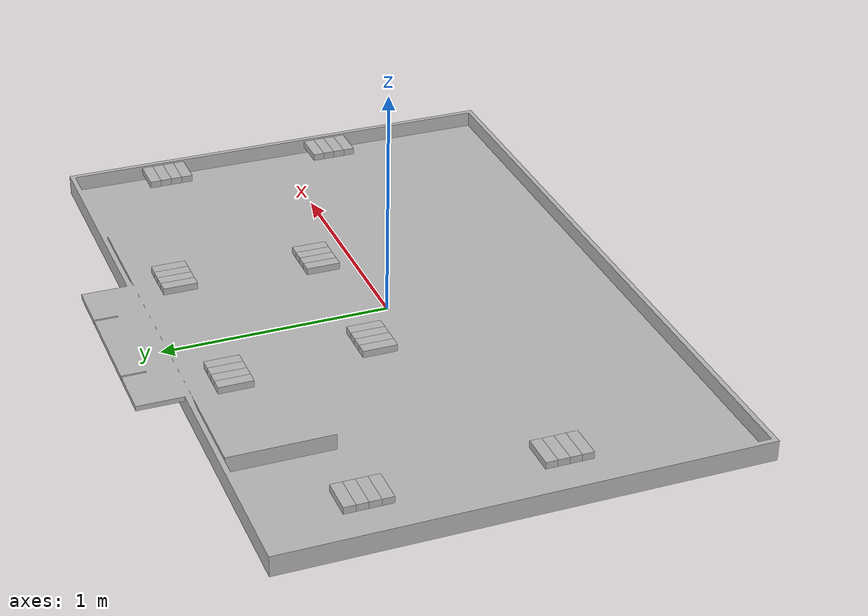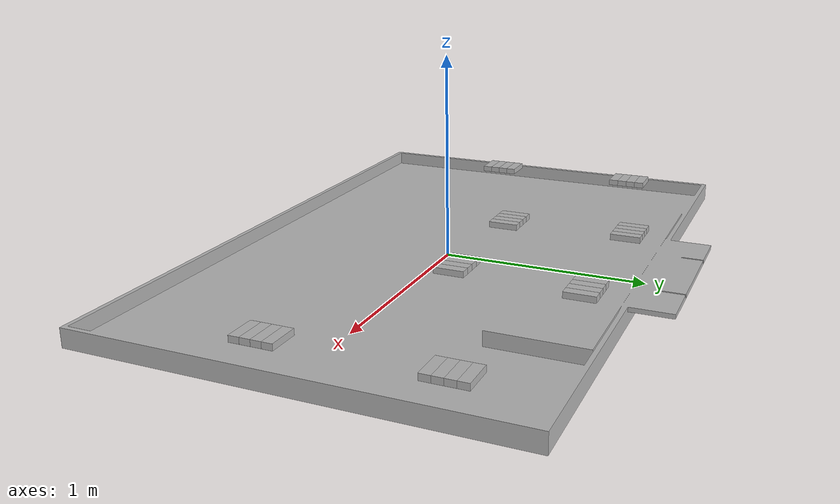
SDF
<sdf version="1.10">
 <world name="default">
  <gravity>0 0 -9.8000000000000007</gravity>
  <magnetic_field>6.0000000000000002e-06 2.3e-05 -4.1999999999999998e-05</magnetic_field>
  <atmosphere type="adiabatic"/>
  <physics type="ode">
   <max_step_size>0.002</max_step_size>
   <real_time_factor>1</real_time_factor>
   <real_time_update_rate>1000</real_time_update_rate>
  </physics>
  <scene>
   <ambient>0.400000006 0.400000006 0.400000006 1</ambient>
   <background>0.699999988 0.699999988 0.699999988 1</background>
   <shadows>true</shadows>
  </scene>
  <audio><device>default</device></audio>
  <spherical_coordinates>
   <surface_model>EARTH_WGS84</surface_model>
   <latitude_deg>0</latitude_deg>
   <longitude_deg>0</longitude_deg>
   <elevation>0</elevation>
   <heading_deg>0</heading_deg>
  </spherical_coordinates>
  <plugin name="gz::sim::systems::Physics" filename="gz-sim-physics-system"/>
  <plugin name="gz::sim::systems::Sensors" filename="gz-sim-sensors-system">
   <render_engine>ogre2</render_engine>
  </plugin>
  <plugin filename="gz-sim-imu-system" name="gz::sim::systems::Imu"/>
  <plugin name="gz::sim::systems::UserCommands" filename="gz-sim-user-commands-system"/>
  <plugin name="gz::sim::systems::SceneBroadcaster" filename="gz-sim-scene-broadcaster-system"/>
  <include><uri>model://Table2026</uri><name>Table_2026</name></include>
  <include><uri>model://Caisse</uri><name>Caisse_milieu_jaune_0</name><pose>0.275 0.2 0.1 0 0 0</pose></include>
  <include><uri>model://Caisse</uri><name>Caisse_milieu_jaune_1</name><pose>0.325 0.2 0.1 0 0 0</pose></include>
  <include>
   <uri>model://Caisse</uri>
   <name>Caisse_milieu_jaune_2</name>
   <pose>0.375 0.2 0.1 3.141592654 0 3.141592654</pose>
  </include>
  <include>
   <uri>model://Caisse</uri>
   <name>Caisse_milieu_jaune_3</name>
   <pose>0.425 0.2 0.1 3.141592654 0 0</pose>
  </include>
  <include>
   <uri>model://Caisse</uri>
   <name>Caisse_nid_jaune_0</name>
   <pose>1.325 -0.125 0.1 0 0 1.5707</pose>
  </include>
  <include>
   <uri>model://Caisse</uri>
   <name>Caisse_nid_jaune_1</name>
   <pose>1.325 -0.175 0.1 3.141592654 0 1.5707</pose>
  </include>
  <include>
   <uri>model://Caisse</uri>
   <name>Caisse_nid_jaune_2</name>
   <pose>1.325 -0.225 0.1 3.141592654 0 1.5707</pose>
  </include>
  <include>
   <uri>model://Caisse</uri>
   <name>Caisse_nid_jaune_3</name>
   <pose>1.325 -0.275 0.1 0 0 1.5707</pose>
  </include>
  <include>
   <uri>model://Caisse</uri>
   <name>Caisse_coin_jaune_0</name>
   <pose>1.325 0.525 0.1 0 0 1.5707</pose>
  </include>
  <include>
   <uri>model://Caisse</uri>
   <name>Caisse_coin_jaune_1</name>
   <pose>1.325 0.575 0.1 3.141592654 0 1.5707</pose>
  </include>
  <include>
   <uri>model://Caisse</uri>
   <name>Caisse_coin_jaune_2</name>
   <pose>1.325 0.625 0.1 3.141592654 0 1.5707</pose>
  </include>
  <include>
   <uri>model://Caisse</uri>
   <name>Caisse_coin_jaune_3</name>
   <pose>1.325 0.675 0.1 0 0 1.5707</pose>
  </include>
  <include>
   <uri>model://Caisse</uri>
   <name>Caisse_public_jaune_0</name>
   <pose>0.325 0.825 0.1 3.141592654 0 3.141592654</pose>
  </include>
  <include>
   <uri>model://Caisse</uri>
   <name>Caisse_public_jaune_1</name>
   <pose>0.375 0.825 0.1 0 0 0</pose>
  </include>
  <include>
   <uri>model://Caisse</uri>
   <name>Caisse_public_jaune_2</name>
   <pose>0.425 0.825 0.1 3.141592654 0 0</pose>
  </include>
  <include>
   <uri>model://Caisse</uri>
   <name>Caisse_public_jaune_3</name>
   <pose>0.475 0.825 0.1 0 0 0</pose>
  </include>
  <include><uri>model://Caisse</uri><name>Caisse_milieu_bleu_0</name><pose>-0.275 0.2 0.1 0 0 0</pose></include>
  <include><uri>model://Caisse</uri><name>Caisse_milieu_bleu_1</name><pose>-0.325 0.2 0.1 0 0 0</pose></include>
  <include>
   <uri>model://Caisse</uri>
   <name>Caisse_milieu_bleu_2</name>
   <pose>-0.375 0.2 0.1 3.141592654 0 0</pose>
  </include>
  <include>
   <uri>model://Caisse</uri>
   <name>Caisse_milieu_bleu_3</name>
   <pose>-0.425 0.2 0.1 3.141592654 0 0</pose>
  </include>
  <include>
   <uri>model://Caisse</uri>
   <name>Caisse_nid_bleu_0</name>
   <pose>-1.325 -0.125 0.1 0 0 1.5707</pose>
  </include>
  <include>
   <uri>model://Caisse</uri>
   <name>Caisse_nid_bleu_1</name>
   <pose>-1.325 -0.175 0.1 3.141592654 0 1.5707</pose>
  </include>
  <include>
   <uri>model://Caisse</uri>
   <name>Caisse_nid_bleu_2</name>
   <pose>-1.325 -0.225 0.1 3.141592654 0 1.5707</pose>
  </include>
  <include>
   <uri>model://Caisse</uri>
   <name>Caisse_nid_bleu_3</name>
   <pose>-1.325 -0.275 0.1 0 0 1.5707</pose>
  </include>
  <include>
   <uri>model://Caisse</uri>
   <name>Caisse_coin_bleu_0</name>
   <pose>-1.325 0.525 0.1 0 0 1.5707</pose>
  </include>
  <include>
   <uri>model://Caisse</uri>
   <name>Caisse_coin_bleu_1</name>
   <pose>-1.325 0.575 0.1 3.141592654 0 1.5707</pose>
  </include>
  <include>
   <uri>model://Caisse</uri>
   <name>Caisse_coin_bleu_2</name>
   <pose>-1.325 0.625 0.1 3.141592654 0 1.5707</pose>
  </include>
  <include>
   <uri>model://Caisse</uri>
   <name>Caisse_coin_bleu_3</name>
   <pose>-1.325 0.675 0.1 0 0 1.5707</pose>
  </include>
  <include>
   <uri>model://Caisse</uri>
   <name>Caisse_public_bleu_0</name>
   <pose>-0.325 0.825 0.1 3.141592654 0 0</pose>
  </include>
  <include>
   <uri>model://Caisse</uri>
   <name>Caisse_public_bleu_1</name>
   <pose>-0.375 0.825 0.1 0 0 0</pose>
  </include>
  <include>
   <uri>model://Caisse</uri>
   <name>Caisse_public_bleu_2</name>
   <pose>-0.425 0.825 0.1 3.141592654 0 0</pose>
  </include>
  <include>
   <uri>model://Caisse</uri>
   <name>Caisse_public_bleu_3</name>
   <pose>-0.475 0.825 0.1 0 0 0</pose>
  </include>
  <light name="sun" type="directional">
   <pose>0 0 10 0 0 0</pose>
   <intensity>1</intensity>
   <direction>-0.5 0.10000000000000001 -0.90000000000000002</direction>
   <diffuse>0.800000012 0.800000012 0.800000012 1</diffuse>
   <specular>0.200000003 0.200000003 0.200000003 1</specular>
   <attenuation>
    <range>1000</range>
    <linear>0.01</linear>
    <constant>0.90000000000000002</constant>
    <quadratic>0.001</quadratic>
   </attenuation>
   <spot><inner_angle>0</inner_angle><outer_angle>0</outer_angle><falloff>0</falloff></spot>
  </light>
 </world>
</sdf>

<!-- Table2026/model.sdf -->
<sdf version='1.7'>
  <model name='Table_2026'>
   	<static>true</static>
    <plugin filename="gz-sim-label-system" name="gz::sim::systems::Label">
        <label>1</label>
    </plugin>
    <link name='link_0'>
			<gravity>0</gravity>
      <inertial>
        <inertia>
          <ixx>0.166667</ixx>
          <ixy>0</ixy>
          <ixz>0</ixz>
          <iyy>0.166667</iyy>
          <iyz>0</iyz>
          <izz>0.166667</izz>
        </inertia>
      </inertial>
      <pose>0 0 0 0 0 0</pose>
      <visual name='visual'>
        <pose>0 0 0 0 0 0</pose>
        <geometry>
          <mesh>
            <uri>Table2026.dae</uri>
            <scale>1 1 1</scale>
          </mesh>
        </geometry>
        <transparency>0</transparency>
        <cast_shadows>1</cast_shadows>
      </visual>
      <collision name='collision'>
        <laser_retro>0</laser_retro>
        <max_contacts>10</max_contacts>
        <pose>0 0 0 0 0 0</pose>
        <geometry>
          <mesh>
            <uri>Table2026.dae</uri>
            <scale>1 1 1</scale>
          </mesh>
        </geometry>
        <surface>
          <friction>
            <ode>
              <mu>1</mu>
              <mu2>1</mu2>
              <fdir1>0 0 0</fdir1>
              <slip1>0</slip1>
              <slip2>0</slip2>
            </ode>
            <torsional>
              <coefficient>1</coefficient>
              <patch_radius>0</patch_radius>
              <surface_radius>0</surface_radius>
              <use_patch_radius>1</use_patch_radius>
              <ode>
                <slip>0</slip>
              </ode>
            </torsional>
          </friction>

          <contact>
            <collide_without_contact>0</collide_without_contact>
            <collide_without_contact_bitmask>1</collide_without_contact_bitmask>
            <collide_bitmask>1</collide_bitmask>
            <ode>
              <soft_cfm>0</soft_cfm>
              <soft_erp>0.2</soft_erp>
              <kp>1e+13</kp>
              <kd>1</kd>
              <max_vel>0.01</max_vel>
              <min_depth>0.01</min_depth>
            </ode>
            <bullet>
              <split_impulse>1</split_impulse>
              <split_impulse_penetration_threshold>-0.01</split_impulse_penetration_threshold>
              <soft_cfm>0</soft_cfm>
              <soft_erp>0.2</soft_erp>
              <kp>1e+13</kp>
              <kd>1</kd>
            </bullet>
          </contact>
        </surface>
      </collision>
    </link>
    <pose>0 0 0 0 0 3.14159</pose>

    <static>0</static>
    <allow_auto_disable>1</allow_auto_disable>
  </model>
</sdf>

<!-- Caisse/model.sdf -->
<sdf version='1.7'>
  <model name='Caisse'>
   	<static>false</static>
    <allow_auto_disable>true</allow_auto_disable>
    <plugin filename="gz-sim-label-system" name="gz::sim::systems::Label">
        <label>10</label>
    </plugin>
    <link name='link_0'>
			<gravity>1</gravity>
      <inertial>
        <pose>0 0 0.02 0 0 0</pose>
        <mass>0.025</mass>
        <inertia>
          <ixx>2.5e-5</ixx>
          <ixy>0</ixy>
          <ixz>0</ixz>
          <iyy>2.5e-5</iyy>
          <iyz>0</iyz>
          <izz>8e-6</izz>
        </inertia>
      </inertial>
      <pose>0 0 0 0 0 0</pose>
      <visual name='visual'>
        <pose>0 0 0 0 -0 0</pose>
        <geometry>
          <mesh>
            <uri>caisse.dae</uri>
            <scale>1.0 1.0 1.0</scale>
          </mesh>
        </geometry>
        <transparency>0</transparency>
        <cast_shadows>1</cast_shadows>
      </visual>

      <collision name='collision'>
        <laser_retro>0</laser_retro>
        <max_contacts>5 </max_contacts>
        <pose>0 0 0 0 0 0</pose>
        <geometry>
          <mesh>
            <uri>caisse.dae</uri>
            <scale>1.0 1.0 1.0</scale>
          </mesh>
        </geometry>
        <surface>
          <bounce>
            <restitution_coefficient>0.1</restitution_coefficient>
            <threshold>1000000</threshold>
          </bounce>
          <friction>
            <ode>
              <mu>1.0</mu>
              <mu2>1.0</mu2>
            </ode>
          </friction>

          <contact>
            <ode>
              <soft_cfm>0</soft_cfm>
              <soft_erp>0.2</soft_erp>
              <kp>1e1</kp>
              <kd>1</kd>
              <max_vel>0</max_vel>
              <min_depth>0.001</min_depth>
            </ode>
          </contact>
        </surface>
      </collision>
    </link>
    <pose>0 0 0 0 0 0</pose>

    <allow_auto_disable>1</allow_auto_disable>
  </model>
</sdf>
